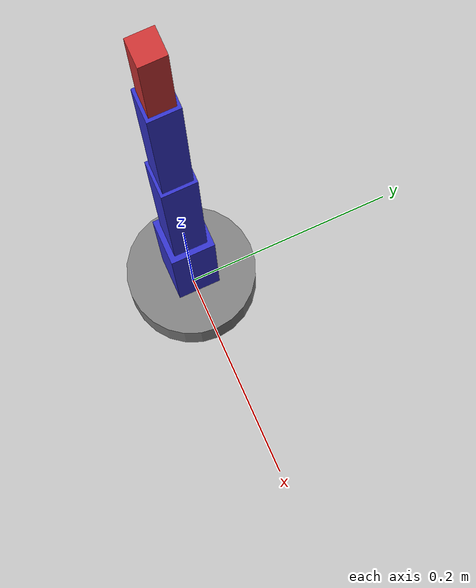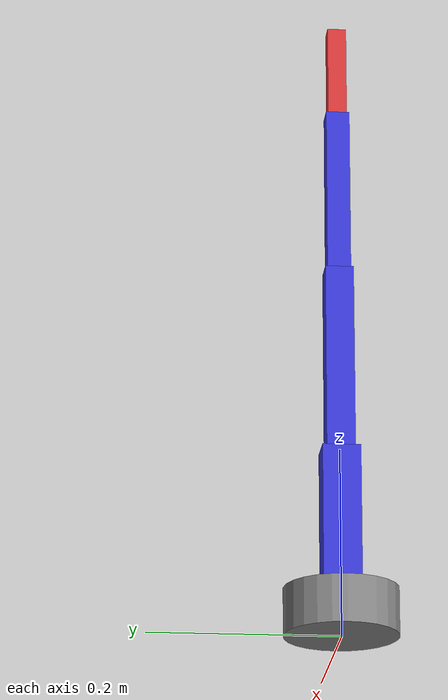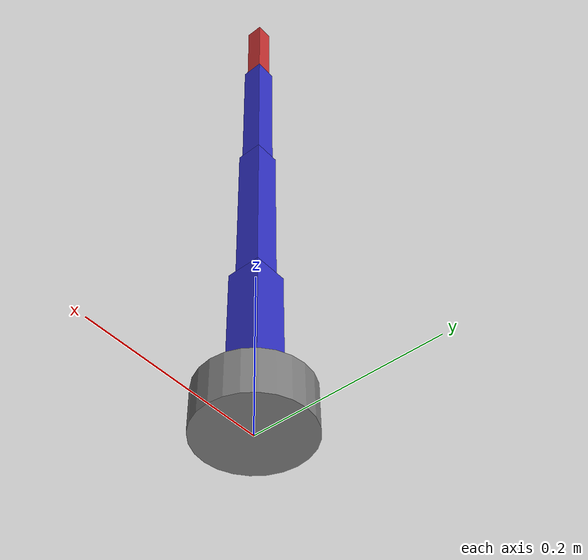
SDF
<?xml version="1.0"?>
<sdf version="1.9">
  <model name="arm">
    <pose>0 0 0 0 0 0</pose>

    <!-- Base -->
    <link name="base">
      <pose>0 0 0.025 0 0 0</pose>
      <inertial>
        <mass>1.0</mass>
        <inertia><ixx>0.01</ixx><iyy>0.01</iyy><izz>0.01</izz><ixy>0</ixy><ixz>0</ixz><iyz>0</iyz></inertia>
      </inertial>
      <visual name="base_vis">
        <geometry><cylinder><radius>0.06</radius><length>0.05</length></cylinder></geometry>
        <material><ambient>0.5 0.5 0.5 1</ambient><diffuse>0.5 0.5 0.5 1</diffuse></material>
      </visual>
      <collision name="base_col">
        <geometry><cylinder><radius>0.06</radius><length>0.05</length></cylinder></geometry>
      </collision>
    </link>

    <!-- Link 1 -->
    <link name="link1">
      <pose>0 0 0.125 0 0 0</pose>
      <inertial>
        <mass>0.5</mass>
        <inertia><ixx>0.005</ixx><iyy>0.005</iyy><izz>0.001</izz><ixy>0</ixy><ixz>0</ixz><iyz>0</iyz></inertia>
      </inertial>
      <visual name="link1_vis">
        <geometry><box><size>0.04 0.04 0.15</size></box></geometry>
        <material><ambient>0.2 0.2 0.8 1</ambient><diffuse>0.2 0.2 0.8 1</diffuse></material>
      </visual>
      <collision name="link1_col">
        <geometry><box><size>0.04 0.04 0.15</size></box></geometry>
      </collision>
    </link>

    <joint name="joint1" type="revolute">
      <parent>base</parent>
      <child>link1</child>
      <pose>0 0 -0.075 0 0 0</pose>
      <axis>
        <xyz>0 0 1</xyz>
        <limit><lower>-1.57</lower><upper>1.57</upper><effort>10</effort><velocity>1</velocity></limit>
      </axis>
    </joint>

    <!-- Link 2 -->
    <link name="link2">
      <pose>0 0 0.30 0 0 0</pose>
      <inertial>
        <mass>0.4</mass>
        <inertia><ixx>0.004</ixx><iyy>0.004</iyy><izz>0.001</izz><ixy>0</ixy><ixz>0</ixz><iyz>0</iyz></inertia>
      </inertial>
      <visual name="link2_vis">
        <geometry><box><size>0.03 0.03 0.20</size></box></geometry>
        <material><ambient>0.2 0.2 0.8 1</ambient><diffuse>0.2 0.2 0.8 1</diffuse></material>
      </visual>
      <collision name="link2_col">
        <geometry><box><size>0.03 0.03 0.20</size></box></geometry>
      </collision>
    </link>

    <joint name="joint2" type="revolute">
      <parent>link1</parent>
      <child>link2</child>
      <pose>0 0 -0.10 0 0 0</pose>
      <axis>
        <xyz>0 1 0</xyz>
        <limit><lower>-1.57</lower><upper>1.57</upper><effort>10</effort><velocity>1</velocity></limit>
      </axis>
    </joint>

    <!-- Link 3 -->
    <link name="link3">
      <pose>0 0 0.49 0 0 0</pose>
      <inertial>
        <mass>0.3</mass>
        <inertia><ixx>0.003</ixx><iyy>0.003</iyy><izz>0.001</izz><ixy>0</ixy><ixz>0</ixz><iyz>0</iyz></inertia>
      </inertial>
      <visual name="link3_vis">
        <geometry><box><size>0.025 0.025 0.18</size></box></geometry>
        <material><ambient>0.2 0.2 0.8 1</ambient><diffuse>0.2 0.2 0.8 1</diffuse></material>
      </visual>
      <collision name="link3_col">
        <geometry><box><size>0.025 0.025 0.18</size></box></geometry>
      </collision>
    </link>

    <joint name="joint3" type="revolute">
      <parent>link2</parent>
      <child>link3</child>
      <pose>0 0 -0.09 0 0 0</pose>
      <axis>
        <xyz>0 1 0</xyz>
        <limit><lower>-1.57</lower><upper>1.57</upper><effort>10</effort><velocity>1</velocity></limit>
      </axis>
    </joint>

    <!-- Link 4 -->
    <link name="link4">
      <pose>0 0 0.63 0 0 0</pose>
      <inertial>
        <mass>0.2</mass>
        <inertia><ixx>0.002</ixx><iyy>0.002</iyy><izz>0.001</izz><ixy>0</ixy><ixz>0</ixz><iyz>0</iyz></inertia>
      </inertial>
      <visual name="link4_vis">
        <geometry><box><size>0.02 0.02 0.10</size></box></geometry>
        <material><ambient>0.8 0.2 0.2 1</ambient><diffuse>0.8 0.2 0.2 1</diffuse></material>
      </visual>
      <collision name="link4_col">
        <geometry><box><size>0.02 0.02 0.10</size></box></geometry>
      </collision>
    </link>

    <joint name="joint4" type="revolute">
      <parent>link3</parent>
      <child>link4</child>
      <pose>0 0 -0.05 0 0 0</pose>
      <axis>
        <xyz>0 1 0</xyz>
        <limit><lower>-1.57</lower><upper>1.57</upper><effort>10</effort><velocity>1</velocity></limit>
      </axis>
    </joint>

    <plugin filename="gz-sim-joint-position-controller-system"
            name="gz::sim::systems::JointPositionController">
      <joint_name>joint1</joint_name>
      <topic>/arm/joint1</topic>
      <p_gain>10</p_gain>
      <i_gain>0.1</i_gain>
      <d_gain>0.5</d_gain>
    </plugin>

    <plugin filename="gz-sim-joint-position-controller-system"
            name="gz::sim::systems::JointPositionController">
      <joint_name>joint2</joint_name>
      <topic>/arm/joint2</topic>
      <p_gain>10</p_gain>
      <i_gain>0.1</i_gain>
      <d_gain>0.5</d_gain>
    </plugin>

    <plugin filename="gz-sim-joint-position-controller-system"
            name="gz::sim::systems::JointPositionController">
      <joint_name>joint3</joint_name>
      <topic>/arm/joint3</topic>
      <p_gain>10</p_gain>
      <i_gain>0.1</i_gain>
      <d_gain>0.5</d_gain>
    </plugin>

    <plugin filename="gz-sim-joint-position-controller-system"
            name="gz::sim::systems::JointPositionController">
      <joint_name>joint4</joint_name>
      <topic>/arm/joint4</topic>
      <p_gain>10</p_gain>
      <i_gain>0.1</i_gain>
      <d_gain>0.5</d_gain>
    </plugin>

  </model>
</sdf>
